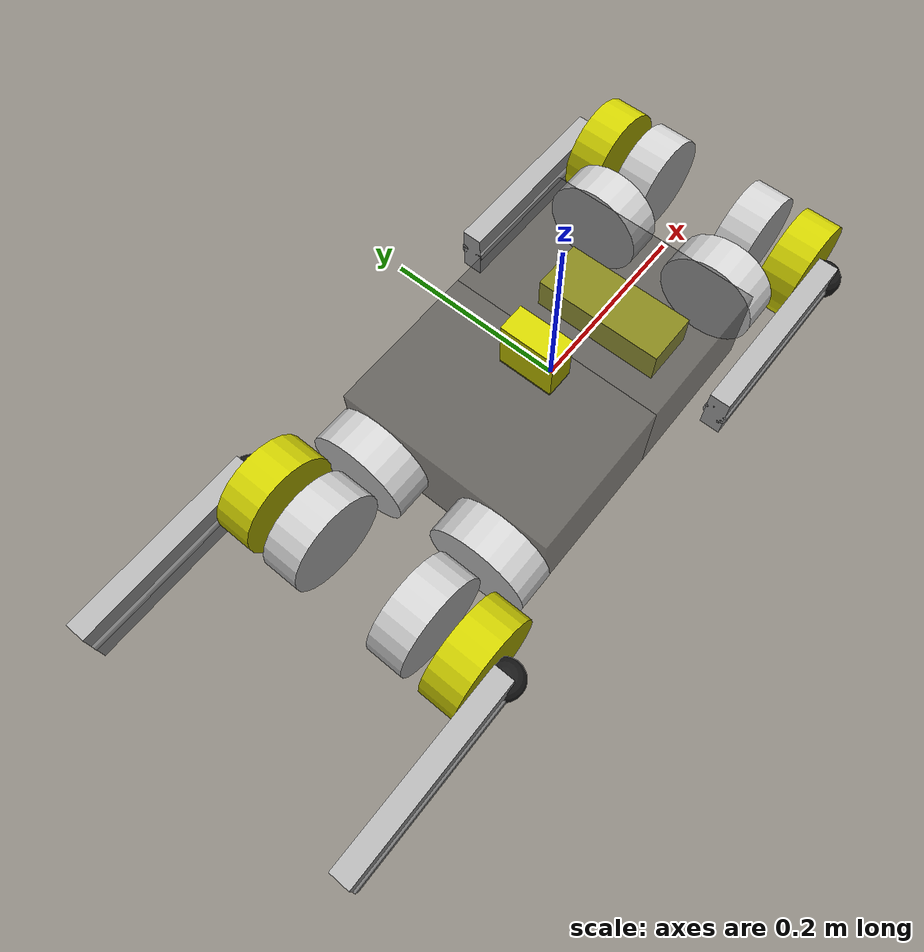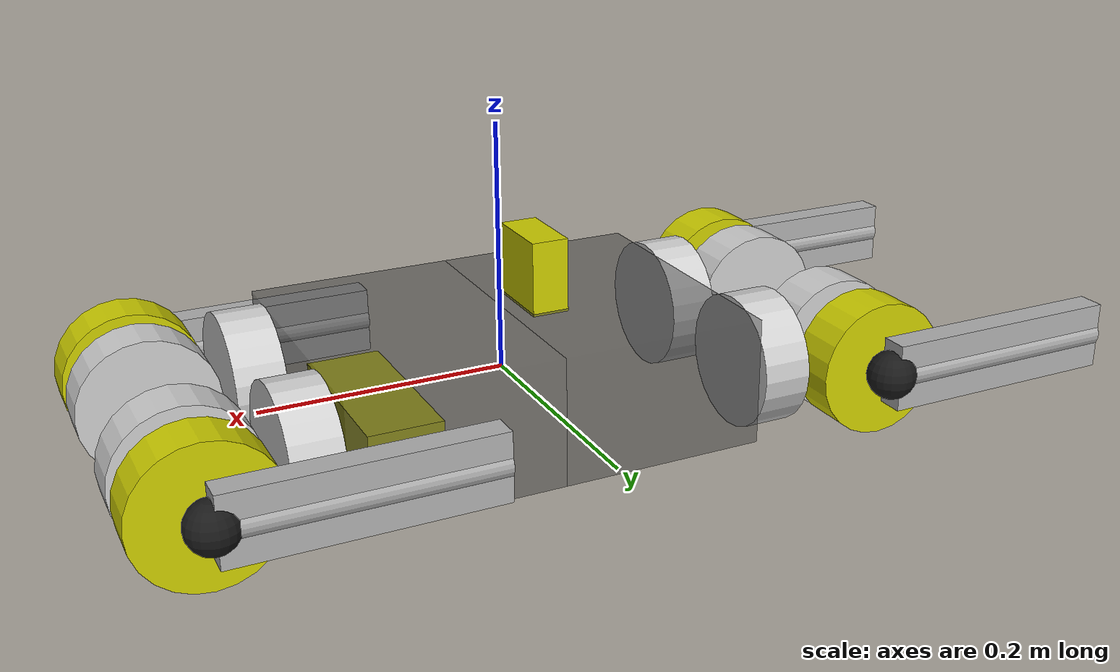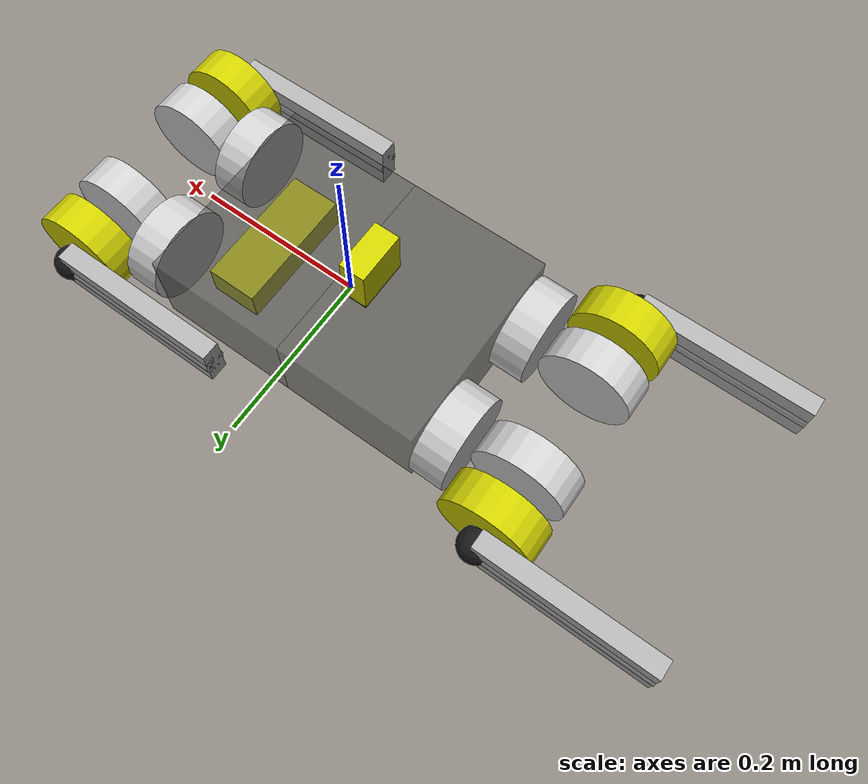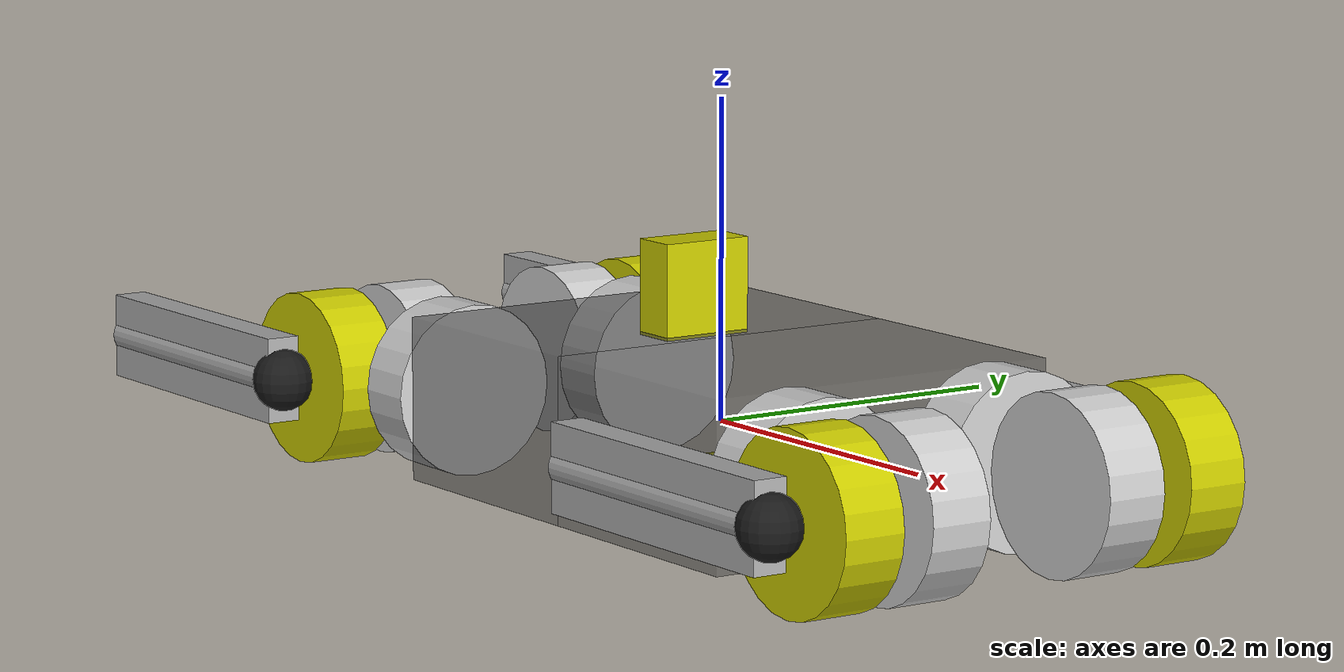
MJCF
<mujoco model="spirit">
  <compiler angle="radian" autolimits="true"/>
  <visual>
		<headlight ambient="0.7 0.7 0.7" />
	</visual>
  <worldbody>
    <geom size="0.08375 0.12 0.052" pos="-0.08375 0 0" type="box" contype="0" conaffinity="0" group="1" density="0" rgba="0.25 0.25 0.25 0.5"/>
    <geom size="0.08375 0.12 0.052" pos="-0.08375 0 0" type="box" rgba="0.25 0.25 0.25 0.5"/>
    <geom size="0.015 0.03 0.03" pos="-0.03 0 0.08" type="box" contype="0" conaffinity="0" group="1" density="0" rgba="0.8 0.8 0 1"/>
    <geom size="0.015 0.03 0.03" pos="-0.03 0 0.08" type="box" rgba="0.8 0.8 0 1"/>
    <geom size="0.055 0.02" pos="-0.18925 0.073 0" quat="0.707107 0 0.707107 0" type="cylinder" contype="0" conaffinity="0" group="1" density="0" rgba="0.8 0.8 0.8 1"/>
    <geom size="0.055 0.02" pos="-0.18925 0.073 0" quat="0.707107 0 0.707107 0" type="cylinder" rgba="0.8 0.8 0.8 1"/>
    <geom size="0.055 0.02" pos="-0.18925 -0.073 0" quat="0.707107 0 0.707107 0" type="cylinder" contype="0" conaffinity="0" group="1" density="0" rgba="0.8 0.8 0.8 1"/>
    <geom size="0.055 0.02" pos="-0.18925 -0.073 0" quat="0.707107 0 0.707107 0" type="cylinder" rgba="0.8 0.8 0.8 1"/>
    <body name="hip1" pos="-0.26925 0.095 0">
      <inertial pos="0 -0.03 0" quat="0.5 0.5 -0.5 0.5" mass="1.15" diaginertia="0.00277437 0.00237427 0.00133927"/>
      <joint name="joint_9" pos="0 0 0" axis="1 0 0" range="-0.707 0.707"/>
      <geom size="0.055 0.02" pos="0 0.028 0" quat="0.707107 0.707107 0 0" type="cylinder" contype="0" conaffinity="0" group="1" density="0" rgba="0.8 0.8 0 1"/>
      <geom size="0.055 0.02" pos="0 0.028 0" quat="0.707107 0.707107 0 0" type="cylinder" rgba="0.8 0.8 0 1"/>
      <geom size="0.055 0.02" pos="0 -0.032 0" quat="0.707107 0.707107 0 0" type="cylinder" contype="0" conaffinity="0" group="1" density="0" rgba="0.8 0.8 0.8 1"/>
      <geom size="0.055 0.02" pos="0 -0.032 0" quat="0.707107 0.707107 0 0" type="cylinder" rgba="0.8 0.8 0.8 1"/>
      <body name="upper1" pos="0 0.06 0">
        <inertial pos="0 0 0" quat="0.5 0.5 0.5 0.5" mass="0.775" diaginertia="0.001 0.001 5e-05"/>
        <joint name="joint_2" pos="0 0 0" axis="0 -1 0" range="-6.28319 6.28319"/>
        <geom size="0.103 0.011 0.0275" pos="-0.103 0 0" type="box" contype="0" conaffinity="0" group="1" density="0" rgba="0.68 0.68 0.68 1"/>
        <geom size="0.103 0.011 0.0275" pos="-0.103 0 0" type="box" rgba="0.68 0.68 0.68 1"/>
        <body name="lower1" pos="-0.206 0 0">
          <inertial pos="0.0343333 0 0" quat="0.5 0.5 0.5 0.5" mass="0.09" diaginertia="0.00087545 0.00056395 0.000345"/>
          <joint name="joint_3" pos="0 0 0" axis="0 1 0" range="0 3.14159"/>
          <geom size="0.013 0.103" pos="0.103 0 0" quat="0.707107 0 0.707107 0" type="cylinder" contype="0" conaffinity="0" group="1" density="0" rgba="0.68 0.68 0.68 1"/>
          <geom size="0.013 0.103" pos="0.103 0 0" quat="0.707107 0 0.707107 0" type="cylinder" rgba="0.68 0.68 0.68 1"/>
          <geom size="0.02" pos="0.206 0 0" contype="0" conaffinity="0" group="1" density="0" rgba="0.1 0.1 0.1 1"/>
          <geom size="0.02" pos="0.206 0 0" rgba="0.1 0.1 0.1 1"/>
        </body>
      </body>
    </body>
    <body name="hip3" pos="-0.26925 -0.095 0">
      <inertial pos="0 0.03 0" quat="0.5 0.5 -0.5 0.5" mass="1.15" diaginertia="0.00277437 0.00237427 0.00133927"/>
      <joint name="joint_11" pos="0 0 0" axis="1 0 0" range="-0.707 0.707"/>
      <geom size="0.055 0.02" pos="0 -0.028 0" quat="0.707107 0.707107 0 0" type="cylinder" contype="0" conaffinity="0" group="1" density="0" rgba="0.8 0.8 0 1"/>
      <geom size="0.055 0.02" pos="0 -0.028 0" quat="0.707107 0.707107 0 0" type="cylinder" rgba="0.8 0.8 0 1"/>
      <geom size="0.055 0.02" pos="0 0.032 0" quat="0.707107 0.707107 0 0" type="cylinder" contype="0" conaffinity="0" group="1" density="0" rgba="0.8 0.8 0.8 1"/>
      <geom size="0.055 0.02" pos="0 0.032 0" quat="0.707107 0.707107 0 0" type="cylinder" rgba="0.8 0.8 0.8 1"/>
      <body name="upper3" pos="0 -0.06 0">
        <inertial pos="0 0 0" quat="0.5 0.5 0.5 0.5" mass="0.775" diaginertia="0.001 0.001 5e-05"/>
        <joint name="joint_6" pos="0 0 0" axis="0 -1 0" range="-6.28319 6.28319"/>
        <geom size="0.103 0.011 0.0275" pos="-0.103 0 0" type="box" contype="0" conaffinity="0" group="1" density="0" rgba="0.68 0.68 0.68 1"/>
        <geom size="0.103 0.011 0.0275" pos="-0.103 0 0" type="box" rgba="0.68 0.68 0.68 1"/>
        <body name="lower3" pos="-0.206 0 0">
          <inertial pos="0.0343333 0 0" quat="0.5 0.5 0.5 0.5" mass="0.09" diaginertia="0.00087545 0.00056395 0.000345"/>
          <joint name="joint_7" pos="0 0 0" axis="0 1 0" range="0 3.14159"/>
          <geom size="0.013 0.103" pos="0.103 0 0" quat="0.707107 0 0.707107 0" type="cylinder" contype="0" conaffinity="0" group="1" density="0" rgba="0.68 0.68 0.68 1"/>
          <geom size="0.013 0.103" pos="0.103 0 0" quat="0.707107 0 0.707107 0" type="cylinder" rgba="0.68 0.68 0.68 1"/>
          <geom size="0.02" pos="0.206 0 0" contype="0" conaffinity="0" group="1" density="0" rgba="0.1 0.1 0.1 1"/>
          <geom size="0.02" pos="0.206 0 0" rgba="0.1 0.1 0.1 1"/>
        </body>
      </body>
    </body>
    <body name="front_body" pos="0.08375 0 0">
      <inertial pos="0.0314738 0 0" quat="0.5 0.5 -0.5 0.5" mass="4.356" diaginertia="0.0373172 0.022988 0.0225184"/>
      <joint name="joint_12" pos="0 0 0" axis="1 0 0" range="-0.707 0.707"/>
      <geom size="0.08375 0.12 0.052" type="box" contype="0" conaffinity="0" group="1" density="0" rgba="0.25 0.25 0.25 0.5"/>
      <geom size="0.08375 0.12 0.052" type="box" rgba="0.25 0.25 0.25 0.5"/>
      <geom size="0.03 0.075 0.02" pos="0.025 0 -0.02" type="box" contype="0" conaffinity="0" group="1" density="0" rgba="0.8 0.8 0 1"/>
      <geom size="0.03 0.075 0.02" pos="0.025 0 -0.02" type="box" rgba="0.8 0.8 0 1"/>
      <geom size="0.055 0.02" pos="0.1055 0.073 0" quat="0.707107 0 0.707107 0" type="cylinder" contype="0" conaffinity="0" group="1" density="0" rgba="0.8 0.8 0.8 1"/>
      <geom size="0.055 0.02" pos="0.1055 0.073 0" quat="0.707107 0 0.707107 0" type="cylinder" rgba="0.8 0.8 0.8 1"/>
      <geom size="0.055 0.02" pos="0.1055 -0.073 0" quat="0.707107 0 0.707107 0" type="cylinder" contype="0" conaffinity="0" group="1" density="0" rgba="0.8 0.8 0.8 1"/>
      <geom size="0.055 0.02" pos="0.1055 -0.073 0" quat="0.707107 0 0.707107 0" type="cylinder" rgba="0.8 0.8 0.8 1"/>
      <body name="hip0" pos="0.1855 0.095 0">
        <inertial pos="0 -0.03 0" quat="0.5 0.5 -0.5 0.5" mass="1.15" diaginertia="0.00277437 0.00237427 0.00133927"/>
        <joint name="joint_8" pos="0 0 0" axis="1 0 0" range="-0.707 0.707"/>
        <geom size="0.055 0.02" pos="0 0.028 0" quat="0.707107 0.707107 0 0" type="cylinder" contype="0" conaffinity="0" group="1" density="0" rgba="0.8 0.8 0 1"/>
        <geom size="0.055 0.02" pos="0 0.028 0" quat="0.707107 0.707107 0 0" type="cylinder" rgba="0.8 0.8 0 1"/>
        <geom size="0.055 0.02" pos="0 -0.032 0" quat="0.707107 0.707107 0 0" type="cylinder" contype="0" conaffinity="0" group="1" density="0" rgba="0.8 0.8 0.8 1"/>
        <geom size="0.055 0.02" pos="0 -0.032 0" quat="0.707107 0.707107 0 0" type="cylinder" rgba="0.8 0.8 0.8 1"/>
        <body name="upper0" pos="0 0.06 0">
          <inertial pos="0 0 0" quat="0.5 0.5 0.5 0.5" mass="0.775" diaginertia="0.001 0.001 5e-05"/>
          <joint name="joint_0" pos="0 0 0" axis="0 -1 0" range="-6.28319 6.28319"/>
          <geom size="0.103 0.011 0.0275" pos="-0.103 0 0" type="box" contype="0" conaffinity="0" group="1" density="0" rgba="0.68 0.68 0.68 1"/>
          <geom size="0.103 0.011 0.0275" pos="-0.103 0 0" type="box" rgba="0.68 0.68 0.68 1"/>
          <body name="lower0" pos="-0.206 0 0">
            <inertial pos="0.0343333 0 0" quat="0.5 0.5 0.5 0.5" mass="0.09" diaginertia="0.00087545 0.00056395 0.000345"/>
            <joint name="joint_1" pos="0 0 0" axis="0 1 0" range="0 3.14159"/>
            <geom size="0.013 0.103" pos="0.103 0 0" quat="0.707107 0 0.707107 0" type="cylinder" contype="0" conaffinity="0" group="1" density="0" rgba="0.68 0.68 0.68 1"/>
            <geom size="0.013 0.103" pos="0.103 0 0" quat="0.707107 0 0.707107 0" type="cylinder" rgba="0.68 0.68 0.68 1"/>
            <geom size="0.02" pos="0.206 0 0" contype="0" conaffinity="0" group="1" density="0" rgba="0.1 0.1 0.1 1"/>
            <geom size="0.02" pos="0.206 0 0" rgba="0.1 0.1 0.1 1"/>
          </body>
        </body>
      </body>
      <body name="hip2" pos="0.1855 -0.095 0">
        <inertial pos="0 0.03 0" quat="0.5 0.5 -0.5 0.5" mass="1.15" diaginertia="0.00277437 0.00237427 0.00133927"/>
        <joint name="joint_10" pos="0 0 0" axis="1 0 0" range="-0.707 0.707"/>
        <geom size="0.055 0.02" pos="0 -0.028 0" quat="0.707107 0.707107 0 0" type="cylinder" contype="0" conaffinity="0" group="1" density="0" rgba="0.8 0.8 0 1"/>
        <geom size="0.055 0.02" pos="0 -0.028 0" quat="0.707107 0.707107 0 0" type="cylinder" rgba="0.8 0.8 0 1"/>
        <geom size="0.055 0.02" pos="0 0.032 0" quat="0.707107 0.707107 0 0" type="cylinder" contype="0" conaffinity="0" group="1" density="0" rgba="0.8 0.8 0.8 1"/>
        <geom size="0.055 0.02" pos="0 0.032 0" quat="0.707107 0.707107 0 0" type="cylinder" rgba="0.8 0.8 0.8 1"/>
        <body name="upper2" pos="0 -0.06 0">
          <inertial pos="0 0 0" quat="0.5 0.5 0.5 0.5" mass="0.775" diaginertia="0.001 0.001 5e-05"/>
          <joint name="joint_4" pos="0 0 0" axis="0 -1 0" range="-6.28319 6.28319"/>
          <geom size="0.103 0.011 0.0275" pos="-0.103 0 0" type="box" contype="0" conaffinity="0" group="1" density="0" rgba="0.68 0.68 0.68 1"/>
          <geom size="0.103 0.011 0.0275" pos="-0.103 0 0" type="box" rgba="0.68 0.68 0.68 1"/>
          <body name="lower2" pos="-0.206 0 0">
            <inertial pos="0.0343333 0 0" quat="0.5 0.5 0.5 0.5" mass="0.09" diaginertia="0.00087545 0.00056395 0.000345"/>
            <joint name="joint_5" pos="0 0 0" axis="0 1 0" range="0 3.14159"/>
            <geom size="0.013 0.103" pos="0.103 0 0" quat="0.707107 0 0.707107 0" type="cylinder" contype="0" conaffinity="0" group="1" density="0" rgba="0.68 0.68 0.68 1"/>
            <geom size="0.013 0.103" pos="0.103 0 0" quat="0.707107 0 0.707107 0" type="cylinder" rgba="0.68 0.68 0.68 1"/>
            <geom size="0.02" pos="0.206 0 0" contype="0" conaffinity="0" group="1" density="0" rgba="0.1 0.1 0.1 1"/>
            <geom size="0.02" pos="0.206 0 0" rgba="0.1 0.1 0.1 1"/>
          </body>
        </body>
      </body>
    </body>
  </worldbody>
</mujoco>
